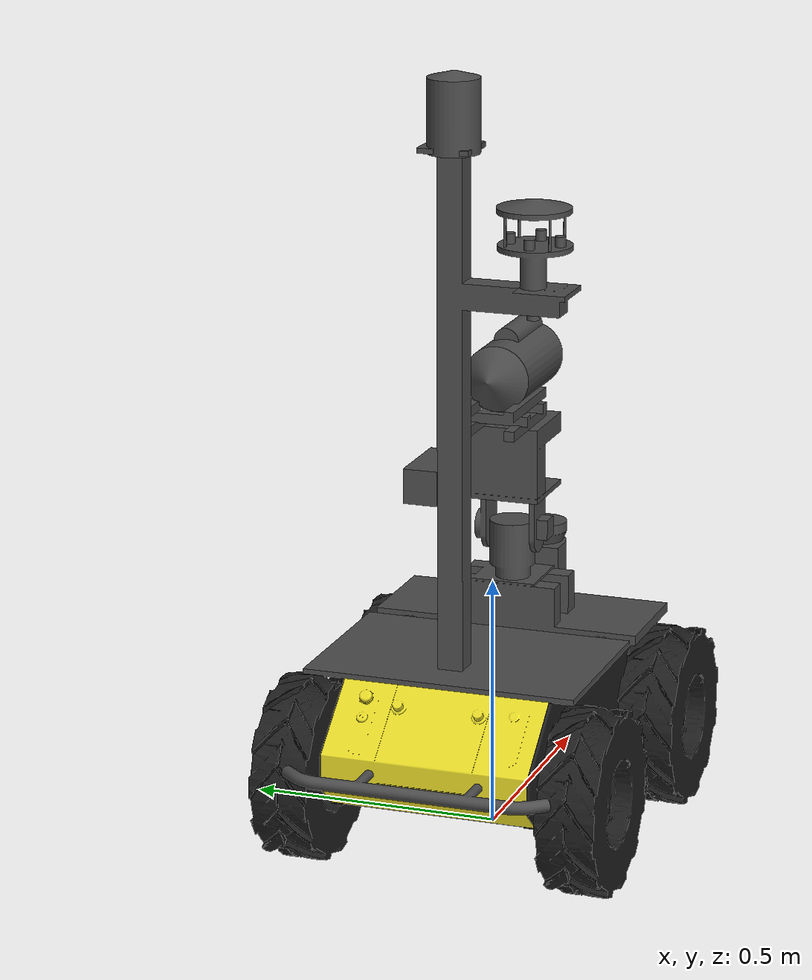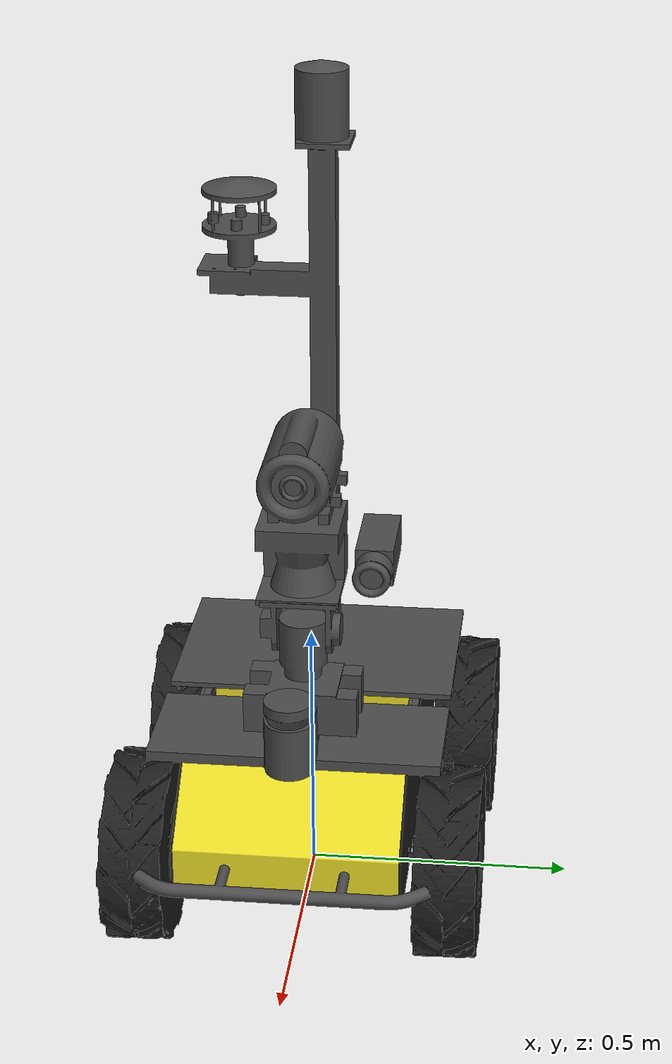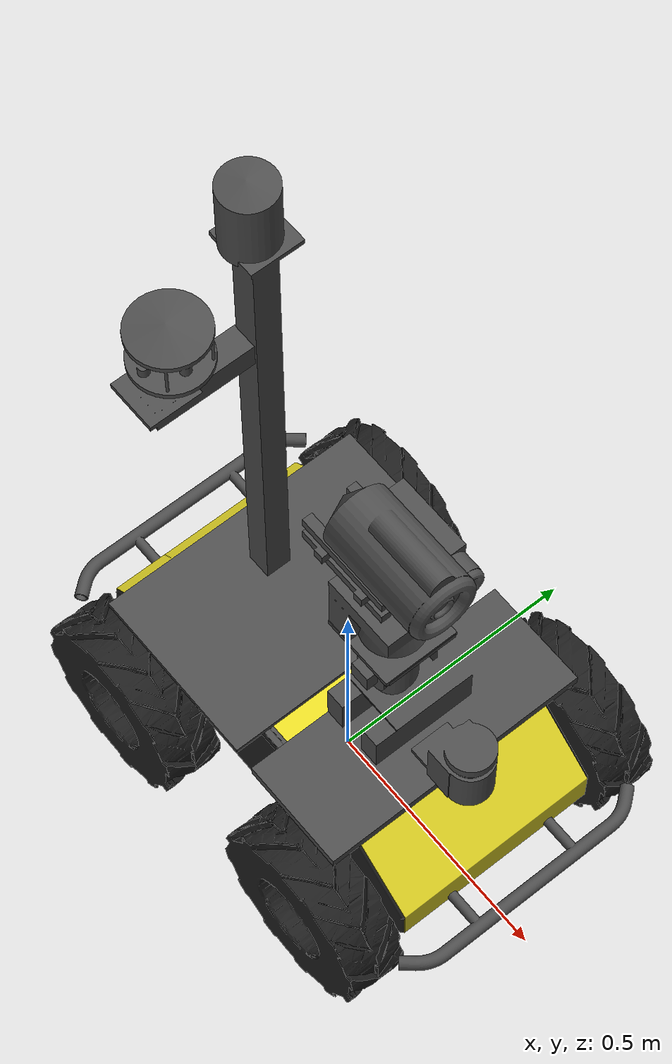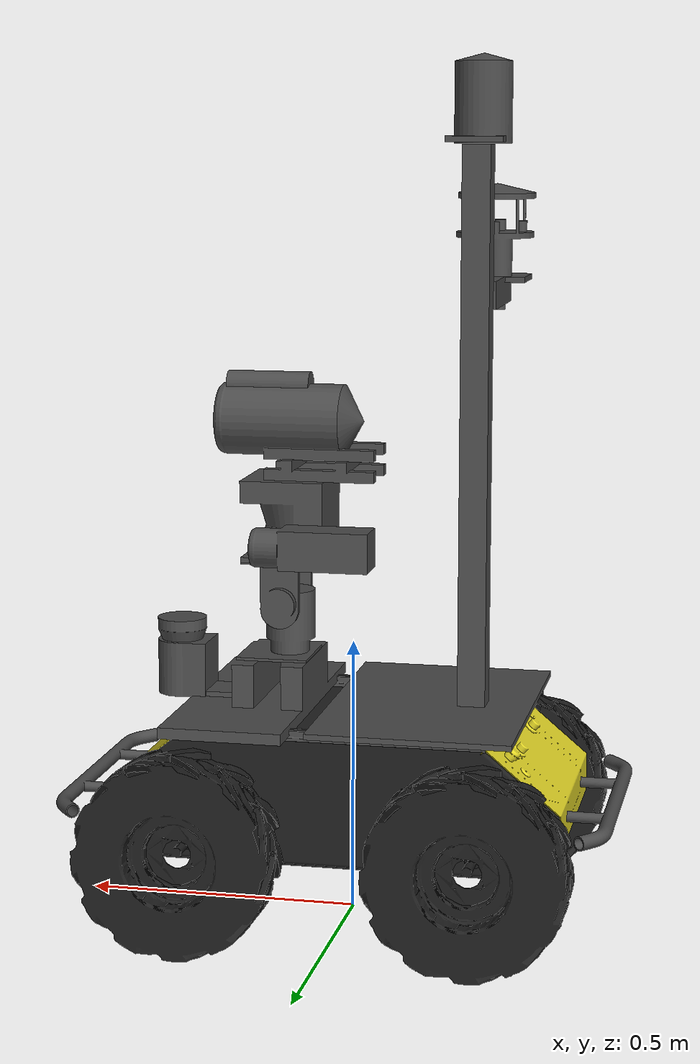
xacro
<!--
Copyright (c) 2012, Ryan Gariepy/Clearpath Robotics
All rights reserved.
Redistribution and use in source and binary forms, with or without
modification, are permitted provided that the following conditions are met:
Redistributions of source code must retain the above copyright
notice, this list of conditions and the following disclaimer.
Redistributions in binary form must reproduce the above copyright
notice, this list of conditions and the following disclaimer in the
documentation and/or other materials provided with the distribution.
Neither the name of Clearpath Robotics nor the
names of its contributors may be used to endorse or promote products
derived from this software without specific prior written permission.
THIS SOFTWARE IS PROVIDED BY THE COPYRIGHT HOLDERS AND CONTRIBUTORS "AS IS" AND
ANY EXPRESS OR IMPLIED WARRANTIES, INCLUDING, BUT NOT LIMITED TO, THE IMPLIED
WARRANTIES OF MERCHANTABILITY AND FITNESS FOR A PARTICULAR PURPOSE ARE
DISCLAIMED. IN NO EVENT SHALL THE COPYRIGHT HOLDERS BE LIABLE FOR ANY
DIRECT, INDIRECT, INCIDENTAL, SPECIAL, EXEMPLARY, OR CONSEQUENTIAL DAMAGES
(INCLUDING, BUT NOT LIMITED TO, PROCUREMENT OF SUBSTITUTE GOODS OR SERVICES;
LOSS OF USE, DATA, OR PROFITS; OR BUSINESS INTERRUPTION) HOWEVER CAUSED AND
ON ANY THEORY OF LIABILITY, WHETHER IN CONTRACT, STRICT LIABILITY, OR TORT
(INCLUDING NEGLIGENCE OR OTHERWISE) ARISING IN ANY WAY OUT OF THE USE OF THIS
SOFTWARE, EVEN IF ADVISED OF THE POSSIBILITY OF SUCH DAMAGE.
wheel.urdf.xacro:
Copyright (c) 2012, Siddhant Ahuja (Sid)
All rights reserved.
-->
<?xml version="1.0"?>

<robot
	xmlns:xi="http://www.w3.org/2001/XInclude"
	xmlns:gazebo="http://playerstage.sourceforge.net/gazebo/xmlschema/#gz"
    xmlns:model="http://playerstage.sourceforge.net/gazebo/xmlschema/#model"
	xmlns:sensor="http://playerstage.sourceforge.net/gazebo/xmlschema/#sensor"
	xmlns:body="http://playerstage.sourceforge.net/gazebo/xmlschema/#body"
    xmlns:geom="http://playerstage.sourceforge.net/gazebo/xmlschema/#geom"
    xmlns:joint="http://playerstage.sourceforge.net/gazebo/xmlschema/#joint"
	xmlns:controller="http://playerstage.sourceforge.net/gazebo/xmlschema/#controller"
	xmlns:interface="http://playerstage.sourceforge.net/gazebo/xmlschema/#interface"
	xmlns:rendering="http://playerstage.sourceforge.net/gazebo/xmlschema/#rendering"
    xmlns:renderable="http://playerstage.sourceforge.net/gazebo/xmlschema/#renderable"
    xmlns:physics="http://playerstage.sourceforge.net/gazebo/xmlschema/#physics"
	xmlns:xacro="http://ros.org/wiki/xacro" name="husky">

	<!-- Included URDF/XACRO Files -->
    <include filename="$(find husky_description)/urdf/materials.urdf.xacro" />
    <include filename="$(find husky_description)/urdf/wheel.urdf.xacro" />
    <include filename="$(find husky_description)/urdf/parts.urdf.xacro" />
    <include filename="$(find husky_description)/urdf/gasbot/gasbot_sensor.urdf.xacro" />
    <include filename="$(find husky_description)/urdf/gasbot/gasbot_ptu.urdf.xacro" />
	<!-- PROPERTY LIST -->
    <!--All units in m-kg-s-radians unit system -->
    <property name="M_PI" value="3.1415926535897931" />

    <!-- Main Body-base-->
    <!-- Location of com : center of mass -->
    <property name="base_x_com" value="-0.08748000" />
    <property name="base_y_com" value="-0.00085000" />
    <property name="base_z_com" value="0.09947000" />

    <!-- Size of the base-->
    <property name="base_x_size" value="0.98740000" />
    <property name="base_y_size" value="0.57090000" />
    <property name="base_z_size" value="0.24750000" />

    <!--Weight of the base-->
    <property name="base_mass" value="33.45489000" /> <!-- in kg-->

    <!--Inertial values for the base at center of mass, aligned with coordinate system. Units are kg*m^2-->
    <property name="base_ixx_com_cs" value="0.60216370" />
    <property name="base_ixy_com_cs" value="-0.02364198" />
    <property name="base_ixz_com_cs" value="-0.11972132" />
    <property name="base_iyy_com_cs" value="1.73859574" />
    <property name="base_iyz_com_cs" value="-0.00154437" />
    <property name="base_izz_com_cs" value="2.02955229" />

    <!--PTU link-->
    <property name="ptu_name" value="ptu" />

<!-- BASE-FOOTPRINT -->
    <!-- base_footprint is a fictitious link(frame) that is on the ground right below base_link origin, navigation stack depends on this frame -->
    <link name="base_footprint">
        <inertial>
            <mass value="0.0001" />
            <origin xyz="0 0 0" />
            <inertia ixx="0.0001" ixy="0.0" ixz="0.0"
                iyy="0.0001" iyz="0.0"
                izz="0.0001" />
        </inertial>

        <visual>
            <origin xyz="0 0 0" rpy="0 0 0" />
            <geometry>
                <box size="0.001 0.001 0.001" />
            </geometry>
        </visual>
    </link>

    <gazebo reference="base_footprint">
        <material>Gazebo/Green</material>
        <turnGravityOff>false</turnGravityOff>
    </gazebo>

    <joint name="base_footprint_joint" type="fixed">
		<origin xyz="0 0 ${wheel_x_size/2 - base_z_origin_to_wheel_origin - base_z_origin_offset - base_z_origin_offset}" rpy="0 0 0" />
        <parent link="base_footprint"/>
        <child link="base_link" />
    </joint>

    <!-- BASE-LINK -->
    <!--Actual body/chassis of the robot-->
    <link name="base_link">
        <inertial>
            <mass value="${base_mass}" />
            <origin xyz="${base_x_com} ${base_y_com} ${base_z_com}" />
            <inertia ixx="${base_ixx_com_cs}" ixy="${base_ixy_com_cs}" ixz="${base_ixz_com_cs}"
                iyy="${base_iyy_com_cs}" iyz="${base_iyz_com_cs}" izz="${base_izz_com_cs}" />
        </inertial>

        <visual>
            <origin xyz="0 0 ${base_z_origin_offset}" rpy="0 0 0" />
            <geometry>
                <mesh filename="package://husky_description/Media/models/base_link.stl" />
            </geometry>
            <material name="Black" />
        </visual>

		<collision>
			<origin xyz="0 0 ${wheel_x_size/2 - base_z_origin_to_wheel_origin - 0.02}" rpy="0 0 0 " />
			<geometry>
				<box size = "${base_x_size+0.02} ${base_y_size} ${base_z_size + 0.02}"/> <!--making it slightly bigger in x and z direction-->
			</geometry>
		</collision>
    </link>
    <gazebo reference="base_link">
        <material>Gazebo/FlatBlack</material>
        <turnGravityOff>false</turnGravityOff>
    </gazebo>

    <!-- WHEEL macros -->
	<husky_wheel fb="back" lr="left" parent="base_link" translateX="-1" translateY="1" flipY="-1"/>
	<husky_wheel fb="back" lr="right" parent="base_link" translateX="-1" translateY="-1" flipY="-1"/>
	<husky_wheel fb="front" lr="left" parent="base_link" translateX="1" translateY="1" flipY="-1"/>
	<husky_wheel fb="front" lr="right" parent="base_link" translateX="1" translateY="-1" flipY="-1"/>

    <!-- DECORATIONS -->
    <!-- Top Plate -->
    <husky_part parent="base_link" name="top_plate" mesh="top_plate"
          colour="Yellow"
          translateX="0.0" translateY="0.0" translateZ="0.005"
          rotateX="0.0" rotateY="0.0" rotateZ="0.0"/>
    <gazebo reference="base_link_top_plate_part">
        <material>Gazebo/Yellow</material>
    </gazebo>
    <!-- User Rail -->
    <husky_part parent="base_link" name="user_rail" mesh="user_rail"
          colour="DarkGray"
          translateX="0.272" translateY="0.0" translateZ="0.245"
          rotateX="0.0" rotateY="0.0" rotateZ="0.0"/>
    <gazebo reference="base_link_user_rail_part">
        <material>Gazebo/Grey</material>
    </gazebo>
    <!-- Bumpers -->
    <husky_part parent="base_link" name="front_bumper" mesh="bumper"
          colour="DarkGray"
          translateX="0.490" translateY="0.0" translateZ="0.091"
          rotateX="0.0" rotateY="0.0" rotateZ="0.0"/>
    <gazebo reference="base_link_front_bumper_part">
        <material>Gazebo/FlatBlack</material>
    </gazebo>

    <husky_part parent="base_link" name="rear_bumper" mesh="bumper"
          colour="DarkGray"
          translateX="-0.48" translateY="0.0" translateZ="0.091"
          rotateX="0.0" rotateY="0.0" rotateZ="3.14"/>
    <gazebo reference="base_link_rear_bumper_part">
        <material>Gazebo/FlatBlack</material>
    </gazebo>

    <!--############ Gasbot Sensors #################################-->

   <!-- Front Lidar -->
   <gasbot_sensor parent="base_link_user_rail_part" name="front_lidar" mesh="sensors/dae/lidar_front"
          colour="DarkGray"
          translateX="0.05" translateY="0.0" translateZ="0.12"
          rotateX="0.0" rotateY="0.0" rotateZ="0"
	  mod_trnX="0.0" mod_trnY="0.0" mod_trnZ="-0.07"
	  mod_rotX="0.0" mod_rotY="0.0" mod_rotZ="3.14"/>
    <gazebo reference="front_lidar">
        <material>Gazebo/FlatBlack</material>
    </gazebo>
   <!-- PTU Base -->
  <gasbot_sensor parent="base_link_user_rail_part" name="ptu_base" mesh="sensors/dae/ptu_plate"
          colour="DarkGray"
          translateX="-0.15" translateY="0.0" translateZ="0"
          rotateX="0.0" rotateY="0.0" rotateZ="0"
	  mod_trnX="0.06" mod_trnY="0.0" mod_trnZ="0"
	  mod_rotX="0.0" mod_rotY="0.0" mod_rotZ="0"/>
    <gazebo reference="ptu_base">
        <material>Gazebo/FlatBlack</material>
    </gazebo>

   <!-- PTU -->
 <gasbot_ptu parent="ptu_base" name="${ptu_name}"
          colour="DarkGray"
          translateX="0" translateY="0.0" translateZ="0.20"
          rotateX="0.0" rotateY="0.0" rotateZ="0"
	  mod_trnX="0.0" mod_trnY="0.0" mod_trnZ="-0.12"
	  mod_rotX="0.0" mod_rotY="0.0" mod_rotZ="0"/>
    <gazebo reference="ptu">
        <material>Gazebo/FlatBlack</material>
    </gazebo>

   <!-- Top laser -->
  <gasbot_sensor parent="${ptu_name}_tilt" name="top_lidar" mesh="sensors/dae/Lidar_top"
          colour="DarkGray"
          translateX="0.0" translateY="0.0" translateZ="0.15"
          rotateX="0.0" rotateY="0.0" rotateZ="0"
	  mod_trnX="0.0" mod_trnY="0.0" mod_trnZ="-0.08"
	  mod_rotX="0.0" mod_rotY="0.0" mod_rotZ="-1.57"/>
    <gazebo reference="top_lidar">
        <material>Gazebo/FlatBlack</material>
    </gazebo>

 <!-- Thermal cam -->
  <gasbot_sensor parent="${ptu_name}_tilt" name="flir_cam" mesh="sensors/dae/thermo_cam"
          colour="DarkGray"
          translateX="0" translateY="0.13" translateZ="0.11"
          rotateX="0.0" rotateY="0.0" rotateZ="0.0"
	  mod_trnX="-0.10" mod_trnY="0.0" mod_trnZ="0"
	  mod_rotX="0.0" mod_rotY="0.0" mod_rotZ="-1.57"/>
    <gazebo reference="flir_cam">
        <material>Gazebo/FlatBlack</material>
    </gazebo>

 <!-- RMLD -->
 <gasbot_sensor parent="top_lidar" name="rmld" mesh="sensors/dae/rmld"
          colour="DarkGray"
          translateX="0" translateY="0.0" translateZ="0.17"
          rotateX="0.0" rotateY="0.0" rotateZ="0.0"
	  mod_trnX="0.0" mod_trnY="0.0" mod_trnZ="0"
	  mod_rotX="0.0" mod_rotY="0.0" mod_rotZ="-1.57"/>
    <gazebo reference="rmld">
        <material>Gazebo/FlatBlack</material>
    </gazebo>

<!-- Pole plate -->
  <gasbot_sensor parent="base_link_user_rail_part" name="pole_plate" mesh="sensors/dae/pole_plate"
          colour="DarkGray"
          translateX="-0.50" translateY="0.0" translateZ="0.0"
          rotateX="0.0" rotateY="0.0" rotateZ="0.0"
	  mod_trnX="0.08" mod_trnY="0.0" mod_trnZ="0"
	  mod_rotX="0.0" mod_rotY="0.0" mod_rotZ="0"/>
    <gazebo reference="pole_plate">
        <material>Gazebo/FlatBlack</material>
    </gazebo>

<!-- Anemometer -->
  <gasbot_sensor parent="pole_plate" name="windsonic" mesh="sensors/dae/anemometer"
          colour="DarkGray"
          translateX="0.0" translateY="-0.20" translateZ="0.90"
          rotateX="0.0" rotateY="0" rotateZ="0.0"
	  mod_trnX="-0.02" mod_trnY="0.05" mod_trnZ="-0.05"
	  mod_rotX="0.0" mod_rotY="0.0" mod_rotZ="0"/>
    <gazebo reference="windsonic">
        <material>Gazebo/FlatBlack</material>
    </gazebo>
<!-- Velodine -->
  <gasbot_sensor parent="pole_plate" name="velodyne" mesh="sensors/dae/velodyne"
          colour="DarkGray"
          translateX="0.0" translateY="0.0" translateZ="1.08"
          rotateX="0.0" rotateY="0" rotateZ="-1.5707"
	  mod_trnX="0.0" mod_trnY="0.0" mod_trnZ="0.0"
	  mod_rotX="0.0" mod_rotY="0.0" mod_rotZ="-1.5707"/>
    <gazebo reference="velodyne">
        <material>Gazebo/FlatBlack</material>
    </gazebo>

    <gazebo>
		<controller:husky_plugin name="husky_diff_controller" plugin="libhusky_gazebo_plugins.so">
		        <alwaysOn>true</alwaysOn>
		        <updateRate>100.0</updateRate>
		        <backLeftJoint>joint_back_left_wheel</backLeftJoint>
		        <backRightJoint>joint_back_right_wheel</backRightJoint>
		        <frontLeftJoint>joint_front_left_wheel</frontLeftJoint>
		        <frontRightJoint>joint_front_right_wheel</frontRightJoint>
		        <wheelSeparation>${base_y_size}</wheelSeparation>
		        <wheelDiameter>${wheel_x_size}</wheelDiameter>
		        <torque>35</torque>
        </controller:husky_plugin>
	</gazebo>

</robot>

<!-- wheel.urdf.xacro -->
<robot xmlns:sensor="http://playerstage.sourceforge.net/gazebo/xmlschema/#sensor"
	xmlns:controller="http://playerstage.sourceforge.net/gazebo/xmlschema/#controller"
	xmlns:interface="http://playerstage.sourceforge.net/gazebo/xmlschema/#interface"
	xmlns:xacro="http://ros.org/wiki/xacro" name="husky_wheel">

	<property name="M_PI" value="3.14159"/>

	<!-- Wheel -->

	<property name="wheel_x_com" value="0.00000000" /> <!-- com : center of mass -->
	<property name="wheel_y_com" value="0.00000000" /> <!-- com : center of mass -->
	<property name="wheel_z_com" value="0.00019000" /> <!-- com : center of mass -->

	<property name="wheel_x_size" value="0.35550000" />
	<property name="wheel_y_size" value="0.35550000" />
	<property name="wheel_z_size" value="0.11430000" />

	<property name="wheel_mass" value="2.63657000" /> <!-- in kg-->

	<property name="wheel_ixx_com_cs" value="0.02466885" /> <!-- at center of mass aligned with coordinate system, kg*m^2-->
	<property name="wheel_ixy_com_cs" value="0.00000000" /> <!-- at center of mass aligned with coordinate system, kg*m^2-->
	<property name="wheel_ixz_com_cs" value="0.00000000" /> <!-- at center of mass aligned with coordinate system, kg*m^2-->
	<property name="wheel_iyy_com_cs" value="0.02466885" /> <!-- at center of mass aligned with coordinate system, kg*m^2-->
	<property name="wheel_iyz_com_cs" value="0.00000000" /> <!-- at center of mass aligned with coordinate system, kg*m^2-->
	<property name="wheel_izz_com_cs" value="0.04410576" /> <!-- at center of mass aligned with coordinate system, kg*m^2-->

	<property name="base_x_origin_to_wheel_origin" value="0.25600006" />
	<property name="base_y_origin_to_wheel_origin" value="0.285475" />
	<property name="base_z_origin_to_wheel_origin" value="0.03282508" />

	<property name="base_z_origin_offset" value="0.00317500" /> <!-- origin is offset in + z direction by 3.175mm, so need to bring it back down for visual and collision-->

	<xacro:macro name="husky_wheel" params="fb lr parent translateX translateY flipY"> <!--fb : front, back ; lr: left, right -->
		<link name="${fb}_${lr}_wheel">
			<inertial>
				<mass value="${wheel_mass}" />
				<origin xyz="${wheel_x_com} ${wheel_y_com} ${wheel_z_com}" />
				<inertia  ixx="${wheel_ixx_com_cs}" ixy="${wheel_ixy_com_cs}" ixz="${wheel_ixz_com_cs}"
					iyy="${wheel_iyy_com_cs}" iyz="${wheel_iyz_com_cs}" izz="${wheel_izz_com_cs}" />
			</inertial>
			<visual>
				<origin xyz="0 0 0" rpy="${flipY*M_PI} 0 0" />
				<geometry>
					<mesh filename="package://husky_description/Media/models/wheel.dae" />
				</geometry>
				<material name="Black" />
			</visual>
			<collision>
				<origin xyz="0 0 0" rpy="${flipY*M_PI/2} 0 0" />
				<geometry>
				    <cylinder length="${wheel_z_size}" radius="${wheel_x_size/2}" />

					<mesh filename="package://husky_description/Media/models/wheel.dae" />

				</geometry>
			</collision>
		</link>

		<gazebo reference="${fb}_${lr}_wheel">
			<mu1 value="1.0"/>
			<mu2 value="1.0"/>
			<kp  value="100000.0" />
			<kd  value="1.0" />
			<fdir1 value="1 0 0"/>
			<material>Gazebo/Grey</material>
			<turnGravityOff>false</turnGravityOff>
		</gazebo>

		<joint name="joint_${fb}_${lr}_wheel" type="continuous">
			<parent link="${parent}"/>
			<child link="${fb}_${lr}_wheel"/>
			<origin xyz="${translateX * base_x_origin_to_wheel_origin} ${translateY * base_y_origin_to_wheel_origin} ${base_z_origin_to_wheel_origin}" rpy="0 0 0" />
			<axis xyz="0 1 0" rpy="0 0 0" />
			<limit effort="100" velocity="100"/>
			<joint_properties damping="0.0" friction="0.0"/>
		</joint>

		<!-- Transmission is important to link the joints and the controller -->
		<transmission name="joint_${fb}_${lr}_wheel_trans" type="SimpleTransmission">
			<actuator name="joint_${fb}_${lr}_wheel_motor" />
			<joint name="joint_${fb}_${lr}_wheel" />
			<mechanicalReduction>1</mechanicalReduction>
			<motorTorqueConstant>1</motorTorqueConstant>
		</transmission>

  	</xacro:macro>
</robot>

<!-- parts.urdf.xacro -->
<robot xmlns:sensor="http://playerstage.sourceforge.net/gazebo/xmlschema/#sensor"
	xmlns:controller="http://playerstage.sourceforge.net/gazebo/xmlschema/#controller"
	xmlns:interface="http://playerstage.sourceforge.net/gazebo/xmlschema/#interface"
	xmlns:xacro="http://ros.org/wiki/xacro" name="husky_part">

	<property name="x_com" value="0.00000000" /> <!-- com : center of mass -->
	<property name="y_com" value="0.00000000" /> <!-- com : center of mass -->
	<property name="z_com" value="0.00000000" /> <!-- com : center of mass -->

	<property name="x_size" value="1.0" />
	<property name="y_size" value="1.0" />
	<property name="z_size" value="1.0" />

	<property name="mass" value="0.1" /> <!-- in kg-->

	<property name="ixx_com_cs" value="0.01" /> <!-- at center of mass aligned with coordinate system, kg*m^2-->
	<property name="ixy_com_cs" value="0.0" /> <!-- at center of mass aligned with coordinate system, kg*m^2-->
	<property name="ixz_com_cs" value="0.0" /> <!-- at center of mass aligned with coordinate system, kg*m^2-->
	<property name="iyy_com_cs" value="0.01" /> <!-- at center of mass aligned with coordinate system, kg*m^2-->
	<property name="iyz_com_cs" value="0.00" /> <!-- at center of mass aligned with coordinate system, kg*m^2-->
	<property name="izz_com_cs" value="0.01" /> <!-- at center of mass aligned with coordinate system, kg*m^2-->

	<xacro:macro name="husky_part" params="parent name mesh colour translateX translateY translateZ rotateX rotateY rotateZ">
		<joint name="${parent}_${name}_joint" type="fixed">
		    <origin xyz="${translateX} ${translateY} ${translateZ}"
		            rpy="${rotateX} ${rotateY} ${rotateZ}" />
		    <parent link="${parent}" />
		    <child link="${parent}_${name}_part" />
		</joint>

		<link name="${parent}_${name}_part">
			<inertial>
				<mass value="${mass}" />
				<origin xyz="${x_com} ${y_com} ${z_com}" />
				<inertia ixx="${ixx_com_cs}" ixy="${ixy_com_cs}" ixz="${ixz_com_cs}"
					iyy="${iyy_com_cs}" iyz="${iyz_com_cs}" izz="${izz_com_cs}" />
			</inertial>
			<visual>
				<origin xyz="0 0 0" rpy="0 0 0" />
				<geometry>
					<mesh filename="package://husky_description/Media/models/${mesh}.dae" />
				</geometry>
				<material name="${colour}" />
			</visual>
			<collision>
				<origin xyz="0 0 0" rpy="0 0 0"/>
				<geometry>
					<box size="0.001 0.001 0.001" /> <!--the collision boundary for parts are taken into account by collision boundary of the base_link-->
				</geometry>
			</collision>
		</link>

  	</xacro:macro>
</robot>

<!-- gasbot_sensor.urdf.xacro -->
<robot xmlns:sensor="http://playerstage.sourceforge.net/gazebo/xmlschema/#sensor"
	xmlns:controller="http://playerstage.sourceforge.net/gazebo/xmlschema/#controller"
	xmlns:interface="http://playerstage.sourceforge.net/gazebo/xmlschema/#interface"
	xmlns:xacro="http://ros.org/wiki/xacro" name="husky_part">

	<property name="x_com" value="0.00000000" /> <!-- com : center of mass -->
	<property name="y_com" value="0.00000000" /> <!-- com : center of mass -->
	<property name="z_com" value="0.00000000" /> <!-- com : center of mass -->

	<property name="x_size" value="1.0" />
	<property name="y_size" value="1.0" />
	<property name="z_size" value="1.0" />

	<property name="mass" value="0.1" /> <!-- in kg-->

	<property name="ixx_com_cs" value="0.01" /> <!-- at center of mass aligned with coordinate system, kg*m^2-->
	<property name="ixy_com_cs" value="0.0" /> <!-- at center of mass aligned with coordinate system, kg*m^2-->
	<property name="ixz_com_cs" value="0.0" /> <!-- at center of mass aligned with coordinate system, kg*m^2-->
	<property name="iyy_com_cs" value="0.01" /> <!-- at center of mass aligned with coordinate system, kg*m^2-->
	<property name="iyz_com_cs" value="0.00" /> <!-- at center of mass aligned with coordinate system, kg*m^2-->
	<property name="izz_com_cs" value="0.01" /> <!-- at center of mass aligned with coordinate system, kg*m^2-->

	<xacro:macro name="gasbot_sensor" params="parent name mesh colour translateX translateY translateZ rotateX rotateY rotateZ mod_trnX mod_trnY mod_trnZ mod_rotX mod_rotY mod_rotZ">
		<joint name="${name}_joint" type="fixed">
		    <origin xyz="${translateX} ${translateY} ${translateZ}"
		            rpy="${rotateX} ${rotateY} ${rotateZ}" />
		    <parent link="${parent}" />
		    <child link="${name}" />
		</joint>

		<link name="${name}">
			<inertial>
				<mass value="${mass}" />
				<origin xyz="${x_com} ${y_com} ${z_com}" />
				<inertia ixx="${ixx_com_cs}" ixy="${ixy_com_cs}" ixz="${ixz_com_cs}"
					iyy="${iyy_com_cs}" iyz="${iyz_com_cs}" izz="${izz_com_cs}" />
			</inertial>
			<visual>
				<origin xyz="${mod_trnX} ${mod_trnY} ${mod_trnZ}" rpy="${mod_rotX} ${mod_rotY} ${mod_rotZ}" />
				<geometry>
					<mesh filename="package://husky_description/Media/models/${mesh}.dae" />
				</geometry>
				<material name="${colour}" />
			</visual>
			<collision>
				<origin xyz="${mod_trnX} ${mod_trnY} ${mod_trnZ}" rpy="${mod_rotX} ${mod_rotY} ${mod_rotZ}"/>
				<geometry>
					<box size="0.001 0.001 0.001" /> <!--the collision boundary for parts are taken into account by collision boundary of the base_link-->
				</geometry>
			</collision>
		</link>

  	</xacro:macro>
</robot>

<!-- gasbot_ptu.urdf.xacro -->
<robot xmlns:sensor="http://playerstage.sourceforge.net/gazebo/xmlschema/#sensor"
	xmlns:controller="http://playerstage.sourceforge.net/gazebo/xmlschema/#controller"
	xmlns:interface="http://playerstage.sourceforge.net/gazebo/xmlschema/#interface"
	xmlns:xacro="http://ros.org/wiki/xacro" name="husky_part">

	<property name="x_com" value="0.00000000" /> <!-- com : center of mass -->
	<property name="y_com" value="0.00000000" /> <!-- com : center of mass -->
	<property name="z_com" value="0.00000000" /> <!-- com : center of mass -->

	<property name="x_size" value="1.0" />
	<property name="y_size" value="1.0" />
	<property name="z_size" value="1.0" />

	<property name="mass" value="0.1" /> <!-- in kg-->

	<property name="ixx_com_cs" value="0.01" /> <!-- at center of mass aligned with coordinate system, kg*m^2-->
	<property name="ixy_com_cs" value="0.0" /> <!-- at center of mass aligned with coordinate system, kg*m^2-->
	<property name="ixz_com_cs" value="0.0" /> <!-- at center of mass aligned with coordinate system, kg*m^2-->
	<property name="iyy_com_cs" value="0.01" /> <!-- at center of mass aligned with coordinate system, kg*m^2-->
	<property name="iyz_com_cs" value="0.00" /> <!-- at center of mass aligned with coordinate system, kg*m^2-->
	<property name="izz_com_cs" value="0.01" /> <!-- at center of mass aligned with coordinate system, kg*m^2-->

	<xacro:macro name="gasbot_ptu" params="parent name colour translateX translateY translateZ rotateX rotateY rotateZ mod_trnX mod_trnY mod_trnZ mod_rotX mod_rotY mod_rotZ">
		<joint name="${name}_pan_joint" type="continuous">
		    <origin xyz="${translateX} ${translateY} ${translateZ}"
		            rpy="${rotateX} ${rotateY} ${rotateZ}" />
                    <axis xyz="0 0 1"/>
		    <parent link="${parent}" />
		    <child link="${name}_pan" />
		</joint>

		<link name="${name}_pan">
			<inertial>
				<mass value="${mass}" />
				<origin xyz="${x_com} ${y_com} ${z_com}" />
				<inertia ixx="${ixx_com_cs}" ixy="${ixy_com_cs}" ixz="${ixz_com_cs}"
					iyy="${iyy_com_cs}" iyz="${iyz_com_cs}" izz="${izz_com_cs}" />
			</inertial>
			<visual>
				<origin xyz="${mod_trnX} ${mod_trnY} ${mod_trnZ}" rpy="${mod_rotX} ${mod_rotY} ${mod_rotZ}" />
				<geometry>
					<mesh filename="package://husky_description/Media/models/sensors/dae/pan.dae" />
				</geometry>
				<material name="${colour}" />
			</visual>
			<collision>
				<origin xyz="${mod_trnX} ${mod_trnY} ${mod_trnZ}" rpy="${mod_rotX} ${mod_rotY} ${mod_rotZ}"/>
				<geometry>
					<box size="0.001 0.001 0.001" /> <!--the collision boundary for parts are taken into account by collision boundary of the base_link-->
				</geometry>
			</collision>
		</link>

		<joint name="${name}_tilt_joint" type="continuous">
		    <origin xyz="0 0 0"
		            rpy="0 0 0" />
                    <axis xyz="0 1 0"/>
		    <parent link="${name}_pan" />
		    <child link="${name}_tilt" />
		</joint>

		<link name="${name}_tilt">
			<inertial>
				<mass value="${mass}" />
				<origin xyz="${x_com} ${y_com} ${z_com}" />
				<inertia ixx="${ixx_com_cs}" ixy="${ixy_com_cs}" ixz="${ixz_com_cs}"
					iyy="${iyy_com_cs}" iyz="${iyz_com_cs}" izz="${izz_com_cs}" />
			</inertial>
			<visual>
				<origin xyz="0 0 0.07" rpy="0 0 0" />
				<geometry>
					<mesh filename="package://husky_description/Media/models/sensors/dae/tilt.dae" />
				</geometry>
				<material name="${colour}" />
			</visual>
			<collision>
				<origin xyz="${mod_trnX} ${mod_trnY} ${mod_trnZ}" rpy="${mod_rotX} ${mod_rotY} ${mod_rotZ}"/>
				<geometry>
					<box size="0.001 0.001 0.001" /> <!--the collision boundary for parts are taken into account by collision boundary of the base_link-->
				</geometry>
			</collision>
		</link>

  	</xacro:macro>
</robot>
